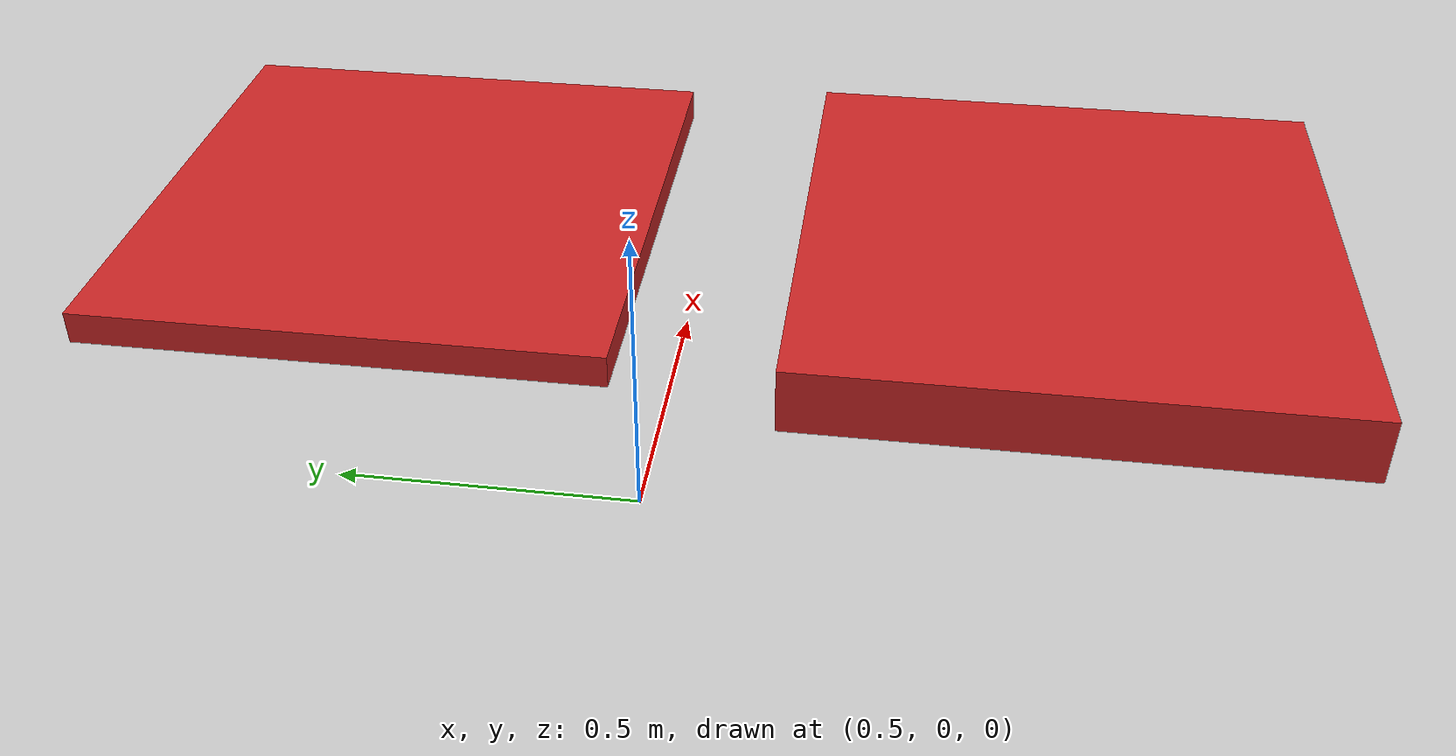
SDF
<sdf version="1.5">
 <world name="default">
  <physics type="ode">
   <type>world</type>
   <max_step_size>0.001</max_step_size>
   <real_time_update_rate>1000</real_time_update_rate>
   <iters>500</iters>
  </physics>
  <include><uri>model://sun</uri></include>
  <include><uri>model://ground_plane</uri></include>
  <model name="unit_box">
   <pose>1.28762 0.609069 0.031891 0 -0 0</pose>
   <link name="link">
    <inertial>
     <mass>1</mass>
     <inertia>
      <ixx>0.166667</ixx>
      <ixy>0</ixy>
      <ixz>0</ixz>
      <iyy>0.166667</iyy>
      <iyz>0</iyz>
      <izz>0.166667</izz>
     </inertia>
    </inertial>
    <collision name="collision"><geometry><box><size>1 1 0.0637814</size></box></geometry></collision>
    <visual name="visual">
     <geometry><box><size>1 1 0.0637814</size></box></geometry>
     <material>
      <script><name>Gazebo/Red</name><uri>file://media/materials/scripts/gazebo.material</uri></script>
     </material>
    </visual>
   </link>
  </model>
  <model name="unit_box_0">
   <pose>1.20735 -0.694981 0.063015 0 -0 0</pose>
   <link name="link">
    <inertial>
     <mass>1</mass>
     <inertia>
      <ixx>0.166667</ixx>
      <ixy>0</ixy>
      <ixz>0</ixz>
      <iyy>0.166667</iyy>
      <iyz>0</iyz>
      <izz>0.166667</izz>
     </inertia>
    </inertial>
    <collision name="collision"><geometry><box><size>1 1 0.12603</size></box></geometry></collision>
    <visual name="visual">
     <geometry><box><size>1 1 0.12603</size></box></geometry>
     <material>
      <script><name>Gazebo/Red</name><uri>file://media/materials/scripts/gazebo.material</uri></script>
     </material>
    </visual>
   </link>
  </model>
 </world>
</sdf>
